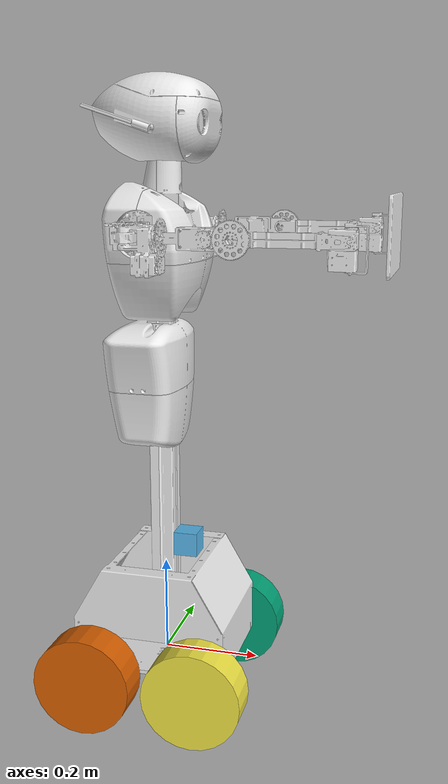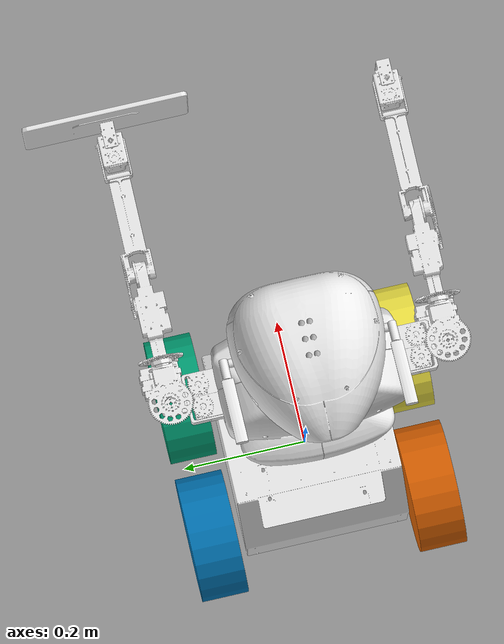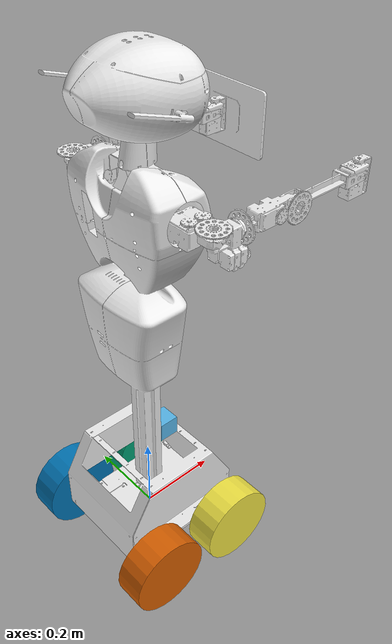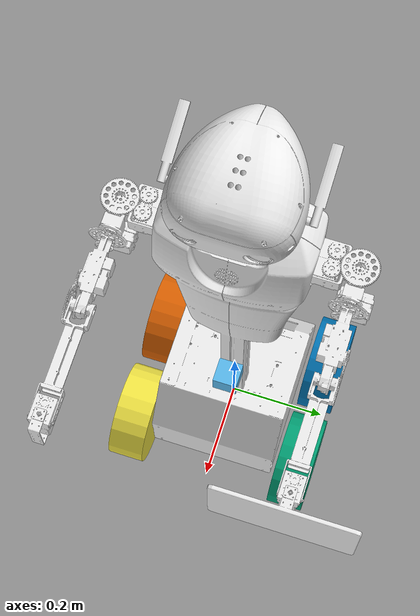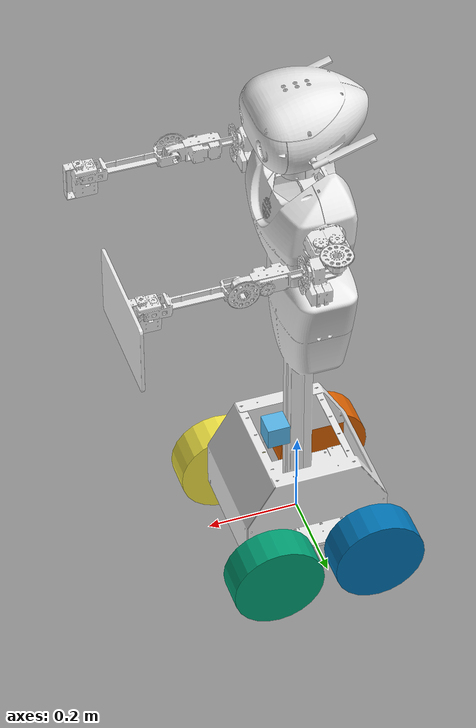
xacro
<?xml version="1.0"?>

<robot name="erica_robot" xmlns:xacro="http://www.ros.org/wiki/xacro">

  <xacro:property name="pi" value="3.14159" />
  <!-- Import all Gazebo-customization elements, including Gazebo colors -->
  <xacro:include filename="$(find erica_description)/urdf/erica_gazebo.gazebo" />
  <xacro:include filename="$(find erica_description)/urdf/materials.xacro" />

  <xacro:property name="base_width" value="0.26" />   <!-- 14.5 in -->
  <xacro:property name="base_length" value="0.312" />  <!-- 21 5/8 in -->
  <xacro:property name="base_height" value="0.105" />   <!-- 2.5 in  -->
  <xacro:property name="wheel_radius" value="0.1016" /> <!-- 4.0 in  -->
  <xacro:property name="wheel_width" value="0.0762" />  <!-- 3.0 in  -->
  <xacro:property name="wheel_gap" value="0.0508" />    <!-- 2.0 in  -->
  <xacro:property name="wheel_setback" value="0.041275" />    <!-- 1 5/8 in  -->

  <!-- Used for fixing robot -->

  <!-- main -->
  <link name="body_main">
    <collision>
      <origin xyz="0 0 0" rpy="0 0 0"/>
      <geometry>
        <mesh filename="package://erica_description/meshes/asm_don_big_main.stl" scale="0.001 0.001 0.001"/>
      </geometry>
    </collision>

    <visual>
      <origin xyz="0 0 0" rpy="0 0 0"/>
      <geometry>
        <mesh filename="package://erica_description/meshes/asm_don_big_main.stl" scale="0.001 0.001 0.001"/>
      </geometry>
      <material name="white"/>
    </visual>

    <inertial>
      <origin xyz="0 0 0" rpy="0 0 0"/>
      <mass value="10"/>
      <inertia ixx="1.0" ixy="0.0" ixz="0.0" iyy="1.0" iyz="0.0" izz="1.0" />
    </inertial>
  </link>

  <joint name="hokuyo_joint" type="fixed">
    <axis xyz="0 1 0" />
    <origin xyz="0.05 0 0.25" rpy="0 0 0"/>
    <parent link="body_main"/>
    <child link="hokuyo_link"/>
  </joint>

    <!-- Hokuyo Laser -->
  <link name="hokuyo_link">
    <collision>
      <origin xyz="0 0 0" rpy="0 0 0"/>
      <geometry>
        <box size="0.05 0.05 0.05"/>
      </geometry>
    </collision>

    <visual>
      <origin xyz="0 0 0" rpy="0 0 0"/>
      <geometry>
        <box size="0.05 0.05 0.05"/>
      </geometry>
    </visual>

    <inertial>
      <mass value="1e-5" />
      <origin xyz="0 0 0" rpy="0 0 0"/>
      <inertia ixx="1e-6" ixy="0" ixz="0" iyy="1e-6" iyz="0" izz="1e-6" />
    </inertial>
  </link>

  <link name="fl_link">
    <visual>
      <geometry>
        <cylinder length="${wheel_width}" radius="${wheel_radius}"/>
      </geometry>
      <origin rpy="${pi/2} 0 0" xyz="0 0 0"/>
    </visual>

    <collision>
      <geometry>
        <cylinder length="${wheel_width}" radius="${wheel_radius}"/>
      </geometry>
      <origin rpy="${pi/2} 0 0" xyz="0 0 0"/>
    </collision>

    <inertial>
      <mass value="20" />
      <origin rpy="${pi/2} 0 0" xyz="0 0 0"/>
      <inertia ixx="1e-6" ixy="0" ixz="0" iyy="1e-6" iyz="0" izz="1e-6" />
    </inertial>
  </link>

  <link name="fr_link">
    <visual>
      <geometry>
        <cylinder length="${wheel_width}" radius="${wheel_radius}"/>
      </geometry>
      <origin rpy="${pi/2} 0 0" xyz="0 0 0"/>
    </visual>

    <collision>
      <geometry>
        <cylinder length="${wheel_width}" radius="${wheel_radius}"/>
      </geometry>
      <origin rpy="${pi/2} 0 0" xyz="0 0 0"/>
    </collision>

    <inertial>
      <mass value="20" />
      <origin rpy="${pi/2} 0 0" xyz="0 0 0"/>
      <inertia ixx="1e-6" ixy="0" ixz="0" iyy="1e-6" iyz="0" izz="1e-6" />
    </inertial>
  </link>

  <link name="bl_link">
    <visual>
      <geometry>
        <cylinder length="${wheel_width}" radius="${wheel_radius}"/>
      </geometry>
      <origin rpy="${pi/2} 0 0" xyz="0 0 0"/>
    </visual>

    <collision>
      <geometry>
        <cylinder length="${wheel_width}" radius="${wheel_radius}"/>
      </geometry>
      <origin rpy="${pi/2} 0 0" xyz="0 0 0"/>
    </collision>

    <inertial>
      <mass value="20" />
      <origin rpy="${pi/2} 0 0" xyz="0 0 0"/>
      <inertia ixx="1e-6" ixy="0" ixz="0" iyy="1e-6" iyz="0" izz="1e-6" />
    </inertial>
  </link>

  <link name="br_link">
    <visual>
      <geometry>
        <cylinder length="${wheel_width}" radius="${wheel_radius}"/>
      </geometry>
      <origin rpy="${pi/2} 0 0" xyz="0 0 0"/>
    </visual>

    <collision>
      <geometry>
        <cylinder length="${wheel_width}" radius="${wheel_radius}"/>
      </geometry>
      <origin rpy="${pi/2} 0 0" xyz="0 0 0"/>
    </collision>

    <inertial>
      <mass value="20" />
      <origin rpy="${pi/2} 0 0" xyz="0 0 0"/>
      <inertia ixx="1e-6" ixy="0" ixz="0" iyy="1e-6" iyz="0" izz="1e-6" />
    </inertial>
  </link>

  <joint name="fl_joint" type="fixed">
    <parent link="body_main"/>
    <child link="fl_link"/>
    <origin rpy="0 0 0" xyz="${base_length/2 - wheel_setback} ${base_width/2 + wheel_gap} 0.0"/>
    <axis xyz="0 0 0"/>
  </joint>

  <joint name="fr_joint" type="fixed">
    <parent link="body_main"/>
    <child link="fr_link"/>
    <origin rpy="0 0 0" xyz="${base_length/2 - wheel_setback} ${-base_width/2 - wheel_gap} 0.0"/>
    <axis xyz="0 0 0"/>
  </joint>

  <joint name="bl_joint" type="fixed">
    <parent link="body_main"/>
    <child link="bl_link"/>
    <origin rpy="0 0 0" xyz="${-base_length/2 + wheel_setback} ${base_width/2 + wheel_gap} 0.0"/>
    <axis xyz="0 0 0"/>
  </joint>

  <joint name="br_joint" type="fixed">
    <parent link="body_main"/>
    <child link="br_link"/>
    <origin rpy="0 0 0" xyz="${-base_length/2 + wheel_setback} ${-base_width/2 - wheel_gap} 0.0"/>
    <axis xyz="0 0 0"/>
  </joint>

  <!-- neck-->
  <joint name="neck_fixed_joint" type="fixed">
    <origin xyz="0 0 0.933" rpy="0 0 0"/>
    <parent link="body_main"/>
    <child link="neck_link"/>
  </joint>

  <link name="neck_link">
    <collision>
      <origin xyz="0 0 0" rpy="0 0 0"/>
         <geometry>
          <mesh filename="package://erica_description/meshes/asm_don_big_neck.stl" scale="0.001 0.001 0.001"/>
        </geometry>
    </collision>

    <visual>
        <origin xyz="0 0 0" rpy="0 0 0"/>
        <geometry>
          <mesh filename="package://erica_description/meshes/asm_don_big_neck.stl" scale="0.001 0.001 0.001"/>
        </geometry>
        <material name="white"/>
    </visual>

    <inertial>
      <origin xyz="0 0 0" rpy="0 0 0"/>
      <mass value="0.1"/>
      <inertia ixx="1.0" ixy="0.0" ixz="0.0" iyy="1.0" iyz="0.0" izz="1.0" />
    </inertial>
  </link>

<!-- head_yaw -->

  <joint name="head_yaw" type="revolute">
    <origin xyz="0 0 0.164" rpy="0 0 0"/>
    <parent link="neck_link"/>
    <child link="head_yaw_link"/>
    <axis xyz="0 0 1"/>
    <limit velocity="6.5" effort="1000" lower="${-pi}" upper="${pi}" />
    <dynamics damping = "0.7"/>
  </joint>

<transmission name="head_yaw_tran">
     <type>transmission_interface/SimpleTransmission</type>
     <joint name="head_yaw">
       <hardwareInterface>EffortJointInterface</hardwareInterface>
     </joint>
     <actuator name="head_yaw_motor">
       <hardwareInterface>EffortJointInterface</hardwareInterface>
       <mechanicalReduction>1</mechanicalReduction>
     </actuator>
  </transmission>

 <link name="head_yaw_link">
    <collision>
      <origin xyz="0 0 0" rpy="0 0 0"/>
         <geometry>
          <mesh filename="package://erica_description/meshes/asm_don_big_main_head_yaw.stl" scale="0.001 0.001 0.001"/>
        </geometry>
    </collision>

    <visual>
        <origin xyz="0 0 0" rpy="0 0 0"/>
        <geometry>
          <mesh filename="package://erica_description/meshes/asm_don_big_main_head_yaw.stl" scale="0.001 0.001 0.001"/>
        </geometry>
        <material name="white"/>
    </visual>

    <inertial>
      <origin xyz="0 0 0" rpy="0 0 0"/>
      <mass value="0.1"/>
      <inertia ixx="1.0" ixy="0.0" ixz="0.0" iyy="1.0" iyz="0.0" izz="1.0" />
    </inertial>
  </link>

  <!-- head_pitch -->
  <joint name="head_pitch" type="revolute">
    <origin xyz="0 0 0" rpy="0 0 0"/>
    <parent link="head_yaw_link"/>
    <child link="head_pitch_link"/>
    <axis xyz="0 -1 0"/>
    <limit velocity="6.5" effort="1000" lower="${-pi}" upper="${pi}" />
    <dynamics damping = "0.7"/>
  </joint>

  <transmission name="head_pitch_tran">
     <type>transmission_interface/SimpleTransmission</type>
     <joint name="head_pitch">
       <hardwareInterface>EffortJointInterface</hardwareInterface>
     </joint>
     <actuator name="head_pitch_motor">
       <hardwareInterface>EffortJointInterface</hardwareInterface>
       <mechanicalReduction>1</mechanicalReduction>
     </actuator>
  </transmission>

  <link name="head_pitch_link">
    <collision>
      <origin xyz="0 0 0" rpy="0 0 0"/>
         <geometry>
          <mesh filename="package://erica_description/meshes/asm_don_big_main_head_pitch.stl" scale="0.001 0.001 0.001"/>
        </geometry>
    </collision>

    <visual>
        <origin xyz="0 0 0" rpy="0 0 0"/>
        <geometry>
          <mesh filename="package://erica_description/meshes/asm_don_big_main_head_pitch.stl" scale="0.001 0.001 0.001"/>
        </geometry>
        <material name="white"/>
    </visual>

    <inertial>
      <origin xyz="0 0 0" rpy="0 0 0"/>
      <mass value="0.1"/>
      <inertia ixx="1.0" ixy="0.0" ixz="0.0" iyy="1.0" iyz="0.0" izz="1.0" />
    </inertial>
  </link>

  <!-- head_roll -->
  <joint name="head_roll" type="revolute">
    <origin xyz="0 0 0" rpy="0 0 0"/>
    <parent link="head_pitch_link"/>
    <child link="head_roll_link"/>
    <axis xyz="1 0 0"/>
    <limit velocity="6.5" effort="1000" lower="${-pi}" upper="${pi}" />
    <dynamics damping = "0.7"/>
  </joint>

  <transmission name="head_roll_tran">
     <type>transmission_interface/SimpleTransmission</type>
     <joint name="head_roll">
       <hardwareInterface>EffortJointInterface</hardwareInterface>
     </joint>
     <actuator name="head_roll_motor">
       <hardwareInterface>EffortJointInterface</hardwareInterface>
       <mechanicalReduction>1</mechanicalReduction>
     </actuator>
  </transmission>

  <link name="head_roll_link">
    <collision>
      <origin xyz="0 0 0" rpy="0 0 0"/>
         <geometry>
          <mesh filename="package://erica_description/meshes/asm_don_big_main_head_roll.stl" scale="0.001 0.001 0.001"/>
        </geometry>
    </collision>

    <visual>
        <origin xyz="0 0 0" rpy="0 0 0"/>
        <geometry>
          <mesh filename="package://erica_description/meshes/asm_don_big_main_head_roll.stl" scale="0.001 0.001 0.001"/>
        </geometry>
        <material name="white"/>
    </visual>

    <inertial>
      <origin xyz="0 0 0" rpy="0 0 0"/>
      <mass value="0.1"/>
      <inertia ixx="1.0" ixy="0.0" ixz="0.0" iyy="1.0" iyz="0.0" izz="1.0" />
    </inertial>
  </link>

  <!-- head(zed) -->
  <joint name="camera_joint" type="fixed">
    <parent link="head_roll_link"/>
    <child link="zed_camera_center"/>
    <origin xyz="0.0778 0 0" rpy="0 0 0"/>
  </joint>

  <!-- Camera Center -->
  <link name="zed_camera_center">
    <collision>
      <origin xyz="0 0 0" rpy="0 0 0"/>
      <geometry>
          <mesh filename="package://erica_description/meshes/asm_don_big_main_zed.stl" scale="0.001 0.001 0.001"/>
        </geometry>
    </collision>

    <visual>
        <origin xyz="0 0 0" rpy="0 0 0"/>
        <geometry>
          <mesh filename="package://erica_description/meshes/asm_don_big_main_zed.stl" scale="0.001 0.001 0.001"/>
        </geometry>
        <material name="white"/>
    </visual>

    <inertial>
      <origin xyz="0 0 0" rpy="0 0 0"/>
      <mass value="0.1"/>
      <inertia ixx="1.0" ixy="0.0" ixz="0.0" iyy="1.0" iyz="0.0" izz="1.0" />
    </inertial>
  </link>

  <!-- Left Camera -->
  <joint name="zed_left_camera_joint" type="fixed">
   <parent link="zed_camera_center"/>
   <child link="zed_left_camera_frame"/>
   <origin xyz="0 0.06 0" rpy="0 0 0" />
  </joint>

  <link name="zed_left_camera_frame" />

  <joint name="zed_left_camera_optical_joint" type="fixed">
    <origin xyz="0 0 0" rpy="-1.57079632679 0.0 -1.57079632679"/>
    <parent link="zed_left_camera_frame"/>
    <child link="zed_left_camera_optical_frame"/>
  </joint>

  <link name="zed_left_camera_optical_frame"/>

  <!-- Right Camera -->
  <joint name="zed_right_camera_joint" type="fixed">
    <parent link="zed_camera_center"/>
    <child link="zed_right_camera_frame"/>
    <origin xyz="0 -0.06 0" rpy="0 0 0" />
  </joint>

  <link name="zed_right_camera_frame" />

  <joint name="zed_right_camera_optical_joint" type="fixed">
   <origin xyz="0 0 0" rpy="-1.57079632679 0.0 -1.57079632679"/>
   <parent link="zed_right_camera_frame"/>
   <child link="zed_right_camera_optical_frame"/>
  </joint>

  <link name="zed_right_camera_optical_frame"/>

  <!-- left_arm -->
  <!-- left_arm_pitch -->
  <joint name="l_arm_sh_p" type="revolute">
    <parent link="body_main"/>
    <child link="l_arm_shoulder_pitch_link"/>
    <origin xyz="0 0.113 0.897" rpy="0 0 0"/>
    <axis xyz="0 1 0"/>
    <limit velocity="6.5" effort="1000" lower="${-pi}" upper="${pi}" />
    <dynamics damping = "0.7"/>
  </joint>

  <transmission name="l_arm_sh_p_tran">
     <type>transmission_interface/SimpleTransmission</type>
     <joint name="l_arm_sh_p">
       <hardwareInterface>EffortJointInterface</hardwareInterface>
     </joint>
     <actuator name="l_arm_sh_p_motor">
       <hardwareInterface>EffortJointInterface</hardwareInterface>
       <mechanicalReduction>1</mechanicalReduction>
     </actuator>
  </transmission>

  <link name="l_arm_shoulder_pitch_link">
    <collision>
      <origin xyz="0 0 0" rpy="0 0 0"/>
      <geometry>
          <mesh filename="package://erica_description/meshes/asm_don_big_arm_l-1.stl" scale="0.001 0.001 0.001"/>
        </geometry>
    </collision>

    <visual>
        <origin xyz="0 0 0" rpy="0 0 0"/>
        <geometry>
          <mesh filename="package://erica_description/meshes/asm_don_big_arm_l-1.stl" scale="0.001 0.001 0.001"/>
        </geometry>
        <material name="white"/>
    </visual>

    <inertial>
      <origin xyz="0 0 0" rpy="0 0 0"/>
      <mass value="0.1"/>
      <inertia ixx="1.0" ixy="0.0" ixz="0.0" iyy="1.0" iyz="0.0" izz="1.0" />
    </inertial>
  </link>

  <!-- left_arm_roll -->
  <joint name="l_arm_sh_r" type="revolute">
    <parent link="l_arm_shoulder_pitch_link"/>
    <child link="l_arm_shoulder_roll_link"/>
    <origin xyz="0 0.097 0" rpy="0 0 0"/>
    <axis xyz="0 0 -1"/>
    <limit velocity="6.5" effort="1000" lower="${-pi}" upper="${pi}" />
    <dynamics damping = "0.7"/>
  </joint>

  <transmission name="l_arm_sh_r_tran">
     <type>transmission_interface/SimpleTransmission</type>
     <joint name="l_arm_sh_r">
       <hardwareInterface>EffortJointInterface</hardwareInterface>
     </joint>
     <actuator name="l_arm_sh_r_motor">
       <hardwareInterface>EffortJointInterface</hardwareInterface>
       <mechanicalReduction>1</mechanicalReduction>
     </actuator>
  </transmission>

  <link name="l_arm_shoulder_roll_link">
    <collision>
      <origin xyz="0 0 0" rpy="0 0 0"/>
      <geometry>
          <mesh filename="package://erica_description/meshes/asm_don_big_arm_l-2.stl" scale="0.001 0.001 0.001"/>
        </geometry>
    </collision>

    <visual>
        <origin xyz="0 0 0" rpy="0 0 0"/>
        <geometry>
          <mesh filename="package://erica_description/meshes/asm_don_big_arm_l-2.stl" scale="0.001 0.001 0.001"/>
        </geometry>
        <material name="white"/>
    </visual>

    <inertial>
      <origin xyz="0 0 0" rpy="0 0 0"/>
      <mass value="0.1"/>
      <inertia ixx="1.0" ixy="0.0" ixz="0.0" iyy="1.0" iyz="0.0" izz="1.0" />
    </inertial>
  </link>

  <!-- left_arm_yaw -->
  <joint name="l_arm_sh_y" type="revolute">
    <parent link="l_arm_shoulder_roll_link"/>
    <child link="l_arm_shoulder_yaw_link"/>
    <origin xyz="0.047 0 0" rpy="0 0 0"/>
    <axis xyz="-1 0 0"/>
    <limit velocity="6.5" effort="1000" lower="${-pi}" upper="${pi}" />
    <dynamics damping = "0.7"/>
  </joint>

  <transmission name="l_arm_sh_y_tran">
     <type>transmission_interface/SimpleTransmission</type>
     <joint name="l_arm_sh_y">
       <hardwareInterface>EffortJointInterface</hardwareInterface>
     </joint>
     <actuator name="l_arm_sh_y_motor">
       <hardwareInterface>EffortJointInterface</hardwareInterface>
       <mechanicalReduction>1</mechanicalReduction>
     </actuator>
  </transmission>

  <link name="l_arm_shoulder_yaw_link">
    <collision>
      <origin xyz="0 0 0" rpy="0 0 0"/>
      <geometry>
          <mesh filename="package://erica_description/meshes/asm_don_big_arm_l-3.stl" scale="0.001 0.001 0.001"/>
        </geometry>
    </collision>

    <visual>
        <origin xyz="0 0 0" rpy="0 0 0"/>
        <geometry>
          <mesh filename="package://erica_description/meshes/asm_don_big_arm_l-3.stl" scale="0.001 0.001 0.001"/>
        </geometry>
        <material name="white"/>
    </visual>

    <inertial>
      <origin xyz="0 0 0" rpy="0 0 0"/>
      <mass value="0.1"/>
      <inertia ixx="1.0" ixy="0.0" ixz="0.0" iyy="1.0" iyz="0.0" izz="1.0" />
    </inertial>
  </link>

  <!-- left_arm_elbow -->
  <joint name="l_arm_el_p" type="revolute">
    <parent link="l_arm_shoulder_yaw_link"/>
    <child link="l_arm_elbow_pitch_link"/>
    <origin xyz="0.153 0 0" rpy="0 0 0"/>
    <axis xyz="0 -1 0"/>
    <limit velocity="6.5" effort="1000" lower="${-pi}" upper="${pi}" />
    <dynamics damping = "0.7"/>
  </joint>

  <transmission name="l_arm_el_p_tran">
     <type>transmission_interface/SimpleTransmission</type>
     <joint name="l_arm_el_p">
       <hardwareInterface>EffortJointInterface</hardwareInterface>
     </joint>
     <actuator name="l_arm_el_p_motor">
       <hardwareInterface>EffortJointInterface</hardwareInterface>
       <mechanicalReduction>1</mechanicalReduction>
     </actuator>
  </transmission>

  <link name="l_arm_elbow_pitch_link">
    <collision>
      <origin xyz="0 0 0" rpy="0 0 0"/>
      <geometry>
          <mesh filename="package://erica_description/meshes/asm_don_big_arm_l-4.stl" scale="0.001 0.001 0.001"/>
        </geometry>
    </collision>

    <visual>
        <origin xyz="0 0 0" rpy="0 0 0"/>
        <geometry>
          <mesh filename="package://erica_description/meshes/asm_don_big_arm_l-4.stl" scale="0.001 0.001 0.001"/>
        </geometry>
        <material name="white"/>
    </visual>

    <inertial>
      <origin xyz="0 0 0" rpy="0 0 0"/>
      <mass value="0.1"/>
      <inertia ixx="1.0" ixy="0.0" ixz="0.0" iyy="1.0" iyz="0.0" izz="1.0" />
    </inertial>
  </link>

  <!-- left_arm_wrist_pitch -->
  <joint name="l_arm_wr_p" type="revolute">
    <parent link="l_arm_elbow_pitch_link"/>
    <child link="l_arm_wrist_pitch_link"/>
    <origin xyz="0.2 0 0" rpy="0 0 0"/>
    <axis xyz="0 -1 0"/>
    <limit velocity="6.5" effort="1000" lower="${-pi}" upper="${pi}" />
    <dynamics damping = "0.7"/>
  </joint>

  <transmission name="l_arm_wr_p_tran">
     <type>transmission_interface/SimpleTransmission</type>
     <joint name="l_arm_wr_p">
       <hardwareInterface>EffortJointInterface</hardwareInterface>
     </joint>
     <actuator name="l_arm_wr_p_motor">
       <hardwareInterface>EffortJointInterface</hardwareInterface>
       <mechanicalReduction>1</mechanicalReduction>
     </actuator>
  </transmission>

  <link name="l_arm_wrist_pitch_link">
    <collision>
      <origin xyz="0 0 0" rpy="0 0 0"/>
      <geometry>
          <mesh filename="package://erica_description/meshes/asm_don_big_arm_l-5.stl" scale="0.001 0.001 0.001"/>
        </geometry>
    </collision>

    <visual>
        <origin xyz="0 0 0" rpy="0 0 0"/>
        <geometry>
          <mesh filename="package://erica_description/meshes/asm_don_big_arm_l-5.stl" scale="0.001 0.001 0.001"/>
        </geometry>
        <material name="white"/>
    </visual>

    <inertial>
      <origin xyz="0 0 0" rpy="0 0 0"/>
      <mass value="0.1"/>
      <inertia ixx="1.0" ixy="0.0" ixz="0.0" iyy="1.0" iyz="0.0" izz="1.0" />
    </inertial>
  </link>

  <!-- left_arm_wrist_roll -->
  <joint name="l_arm_wr_r" type="revolute">
    <parent link="l_arm_wrist_pitch_link"/>
    <child link="l_arm_wrist_roll_link"/>
    <origin xyz="0 0 0" rpy="0 0 0"/>
    <axis xyz="0 0 -1"/>
    <limit velocity="6.5" effort="1000" lower="${-pi}" upper="${pi}" />
    <dynamics damping = "0.7"/>
  </joint>

  <transmission name="l_arm_wr_r_tran">
     <type>transmission_interface/SimpleTransmission</type>
     <joint name="l_arm_wr_r">
       <hardwareInterface>EffortJointInterface</hardwareInterface>
     </joint>
     <actuator name="l_arm_wr_r_motor">
       <hardwareInterface>EffortJointInterface</hardwareInterface>
       <mechanicalReduction>1</mechanicalReduction>
     </actuator>
  </transmission>

  <link name="l_arm_wrist_roll_link">
    <collision>
      <origin xyz="0 0 0" rpy="0 0 0"/>
      <geometry>
          <mesh filename="package://erica_description/meshes/asm_don_big_arm_l-6.stl" scale="0.001 0.001 0.001"/>
        </geometry>
    </collision>

    <visual>
        <origin xyz="0 0 0" rpy="0 0 0"/>
        <geometry>
          <mesh filename="package://erica_description/meshes/asm_don_big_arm_l-6.stl" scale="0.001 0.001 0.001"/>
        </geometry>
        <material name="white"/>
    </visual>

    <inertial>
      <origin xyz="0 0 0" rpy="0 0 0"/>
      <mass value="0.1"/>
      <inertia ixx="1.0" ixy="0.0" ixz="0.0" iyy="1.0" iyz="0.0" izz="1.0" />
    </inertial>
  </link>

  <!-- right_arm -->
  <!-- right_arm_pitch -->
  <joint name="r_arm_sh_p" type="revolute">
    <parent link="body_main"/>
    <child link="r_arm_shoulder_pitch_link"/>
    <origin xyz="0 -0.113 0.897" rpy="0 0 0"/>
    <axis xyz="0 -1 0"/>
    <limit velocity="6.5" effort="1000" lower="${-pi}" upper="${pi}" />
    <dynamics damping = "0.7"/>
  </joint>

  <transmission name="r_arm_sh_p_tran">
     <type>transmission_interface/SimpleTransmission</type>
     <joint name="r_arm_sh_p">
       <hardwareInterface>EffortJointInterface</hardwareInterface>
     </joint>
     <actuator name="r_arm_sh_p_motor">
       <hardwareInterface>EffortJointInterface</hardwareInterface>
       <mechanicalReduction>1</mechanicalReduction>
     </actuator>
  </transmission>

  <link name="r_arm_shoulder_pitch_link">
    <collision>
      <origin xyz="0 0 0" rpy="0 0 0"/>
      <geometry>
          <mesh filename="package://erica_description/meshes/asm_don_big_arm_r-1.stl" scale="0.001 0.001 0.001"/>
        </geometry>
    </collision>

    <visual>
        <origin xyz="0 0 0" rpy="0 0 0"/>
        <geometry>
          <mesh filename="package://erica_description/meshes/asm_don_big_arm_r-1.stl" scale="0.001 0.001 0.001"/>
        </geometry>
        <material name="white"/>
    </visual>

    <inertial>
      <origin xyz="0 0 0" rpy="0 0 0"/>
      <mass value="0.1"/>
      <inertia ixx="1.0" ixy="0.0" ixz="0.0" iyy="1.0" iyz="0.0" izz="1.0" />
    </inertial>
  </link>

  <!-- right_arm_roll -->
  <joint name="r_arm_sh_r" type="revolute">
    <parent link="r_arm_shoulder_pitch_link"/>
    <child link="r_arm_shoulder_roll_link"/>
    <origin xyz="0 -0.097 0" rpy="0 0 0"/>
    <axis xyz="0 0 -1"/>
    <limit velocity="6.5" effort="1000" lower="${-pi}" upper="${pi}" />
    <dynamics damping = "0.7"/>
  </joint>

  <transmission name="r_arm_sh_r_tran">
     <type>transmission_interface/SimpleTransmission</type>
     <joint name="r_arm_sh_r">
       <hardwareInterface>EffortJointInterface</hardwareInterface>
     </joint>
     <actuator name="r_arm_sh_r_motor">
       <hardwareInterface>EffortJointInterface</hardwareInterface>
       <mechanicalReduction>1</mechanicalReduction>
     </actuator>
  </transmission>

  <link name="r_arm_shoulder_roll_link">
    <collision>
      <origin xyz="0 0 0" rpy="0 0 0"/>
      <geometry>
          <mesh filename="package://erica_description/meshes/asm_don_big_arm_r-2.stl" scale="0.001 0.001 0.001"/>
        </geometry>
    </collision>

    <visual>
        <origin xyz="0 0 0" rpy="0 0 0"/>
        <geometry>
          <mesh filename="package://erica_description/meshes/asm_don_big_arm_r-2.stl" scale="0.001 0.001 0.001"/>
        </geometry>
        <material name="white"/>
    </visual>

    <inertial>
      <origin xyz="0 0 0" rpy="0 0 0"/>
      <mass value="0.1"/>
      <inertia ixx="1.0" ixy="0.0" ixz="0.0" iyy="1.0" iyz="0.0" izz="1.0" />
    </inertial>
  </link>

  <!-- right_arm_yaw -->
  <joint name="r_arm_sh_y" type="revolute">
    <parent link="r_arm_shoulder_roll_link"/>
    <child link="r_arm_shoulder_yaw_link"/>
    <origin xyz="0.047 0 0" rpy="0 0 0"/>
    <axis xyz="-1 0 0"/>
    <limit velocity="6.5" effort="1000" lower="${-pi}" upper="${pi}" />
    <dynamics damping = "0.7"/>
  </joint>

  <transmission name="r_arm_sh_y_tran">
     <type>transmission_interface/SimpleTransmission</type>
     <joint name="r_arm_sh_y">
       <hardwareInterface>EffortJointInterface</hardwareInterface>
     </joint>
     <actuator name="r_arm_sh_y_motor">
       <hardwareInterface>EffortJointInterface</hardwareInterface>
       <mechanicalReduction>1</mechanicalReduction>
     </actuator>
  </transmission>

  <link name="r_arm_shoulder_yaw_link">
    <collision>
      <origin xyz="0 0 0" rpy="0 0 0"/>
      <geometry>
          <mesh filename="package://erica_description/meshes/asm_don_big_arm_r-3.stl" scale="0.001 0.001 0.001"/>
        </geometry>
    </collision>

    <visual>
        <origin xyz="0 0 0" rpy="0 0 0"/>
        <geometry>
          <mesh filename="package://erica_description/meshes/asm_don_big_arm_r-3.stl" scale="0.001 0.001 0.001"/>
        </geometry>
        <material name="white"/>
    </visual>

    <inertial>
      <origin xyz="0 0 0" rpy="0 0 0"/>
      <mass value="0.1"/>
      <inertia ixx="1.0" ixy="0.0" ixz="0.0" iyy="1.0" iyz="0.0" izz="1.0" />
    </inertial>
  </link>
  <!-- right_arm_elbow -->

  <joint name="r_arm_el_p" type="revolute">
    <parent link="r_arm_shoulder_yaw_link"/>
    <child link="r_arm_elbow_pitch_link"/>
    <origin xyz="0.153 0 0" rpy="0 0 0"/>
    <axis xyz="0 1 0"/>
    <limit velocity="6.5" effort="1000" lower="${-pi}" upper="${pi}" />
    <dynamics damping = "0.7"/>
  </joint>

  <transmission name="r_arm_el_p_tran">
     <type>transmission_interface/SimpleTransmission</type>
     <joint name="r_arm_el_p">
       <hardwareInterface>EffortJointInterface</hardwareInterface>
     </joint>
     <actuator name="r_arm_el_p_motor">
       <hardwareInterface>EffortJointInterface</hardwareInterface>
       <mechanicalReduction>1</mechanicalReduction>
     </actuator>
  </transmission>

  <link name="r_arm_elbow_pitch_link">
    <collision>
      <origin xyz="0 0 0" rpy="0 0 0"/>
      <geometry>
          <mesh filename="package://erica_description/meshes/asm_don_big_arm_r-4.stl" scale="0.001 0.001 0.001"/>
        </geometry>
    </collision>

    <visual>
        <origin xyz="0 0 0" rpy="0 0 0"/>
        <geometry>
          <mesh filename="package://erica_description/meshes/asm_don_big_arm_r-4.stl" scale="0.001 0.001 0.001"/>
        </geometry>
        <material name="white"/>
    </visual>

    <inertial>
      <origin xyz="0 0 0" rpy="0 0 0"/>
      <mass value="0.1"/>
      <inertia ixx="1.0" ixy="0.0" ixz="0.0" iyy="1.0" iyz="0.0" izz="1.0" />
    </inertial>
  </link>

  <!-- right_arm_wrist_pitch -->
  <joint name="r_arm_wr_p" type="revolute">
    <parent link="r_arm_elbow_pitch_link"/>
    <child link="r_arm_wrist_pitch_link"/>
    <origin xyz="0.2 0 0" rpy="0 0 0"/>
    <axis xyz="0 1 0"/>
    <limit velocity="6.5" effort="1000" lower="${-pi}" upper="${pi}" />
    <dynamics damping = "0.7"/>
  </joint>

  <transmission name="r_arm_wr_p_tran">
     <type>transmission_interface/SimpleTransmission</type>
     <joint name="r_arm_wr_p">
       <hardwareInterface>EffortJointInterface</hardwareInterface>
     </joint>
     <actuator name="r_arm_wr_p_motor">
       <hardwareInterface>EffortJointInterface</hardwareInterface>
       <mechanicalReduction>1</mechanicalReduction>
     </actuator>
  </transmission>

  <link name="r_arm_wrist_pitch_link">
    <collision>
      <origin xyz="0 0 0" rpy="0 0 0"/>
      <geometry>
          <mesh filename="package://erica_description/meshes/asm_don_big_arm_r-5.stl" scale="0.001 0.001 0.001"/>
        </geometry>
    </collision>

    <visual>
        <origin xyz="0 0 0" rpy="0 0 0"/>
        <geometry>
          <mesh filename="package://erica_description/meshes/asm_don_big_arm_r-5.stl" scale="0.001 0.001 0.001"/>
        </geometry>
        <material name="white"/>
    </visual>

    <inertial>
      <origin xyz="0 0 0" rpy="0 0 0"/>
      <mass value="0.1"/>
      <inertia ixx="1.0" ixy="0.0" ixz="0.0" iyy="1.0" iyz="0.0" izz="1.0" />
    </inertial>
  </link>

<!-- right_arm_wrist_roll -->

  <joint name="r_arm_wr_r" type="revolute">
    <parent link="r_arm_wrist_pitch_link"/>
    <child link="r_arm_wrist_roll_link"/>
    <origin xyz="0 0 0" rpy="0 0 0"/>
    <axis xyz="0 0 -1"/>
    <limit velocity="6.5" effort="1000" lower="${-pi}" upper="${pi}" />
    <dynamics damping = "0.7"/>
  </joint>

  <transmission name="r_arm_wr_r_tran">
     <type>transmission_interface/SimpleTransmission</type>
     <joint name="r_arm_wr_r">
       <hardwareInterface>EffortJointInterface</hardwareInterface>
     </joint>
     <actuator name="r_arm_wr_r_motor">
       <hardwareInterface>EffortJointInterface</hardwareInterface>
       <mechanicalReduction>1</mechanicalReduction>
     </actuator>
  </transmission>

  <link name="r_arm_wrist_roll_link">
    <collision>
      <origin xyz="0 0 0" rpy="0 0 0"/>
      <geometry>
          <mesh filename="package://erica_description/meshes/asm_don_big_arm_r-6.stl" scale="0.001 0.001 0.001"/>
        </geometry>
    </collision>

    <visual>
        <origin xyz="0 0 0" rpy="0 0 0"/>
        <geometry>
          <mesh filename="package://erica_description/meshes/asm_don_big_arm_r-6.stl" scale="0.001 0.001 0.001"/>
        </geometry>
        <material name="white"/>
    </visual>

    <inertial>
      <origin xyz="0 0 0" rpy="0 0 0"/>
      <mass value="0.1"/>
      <inertia ixx="1.0" ixy="0.0" ixz="0.0" iyy="1.0" iyz="0.0" izz="1.0" />
    </inertial>
  </link>

</robot>
